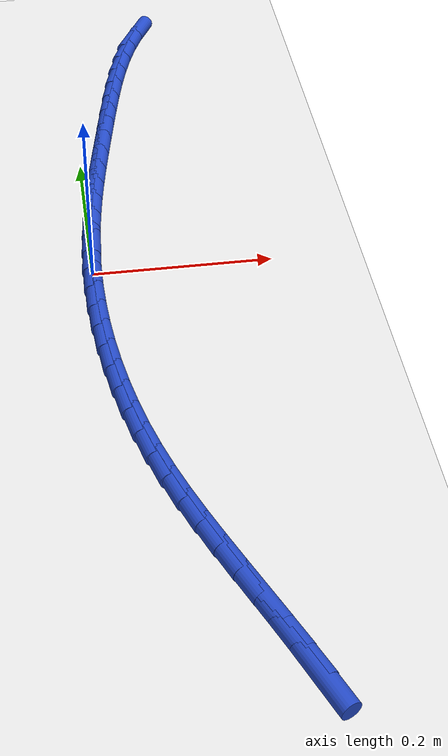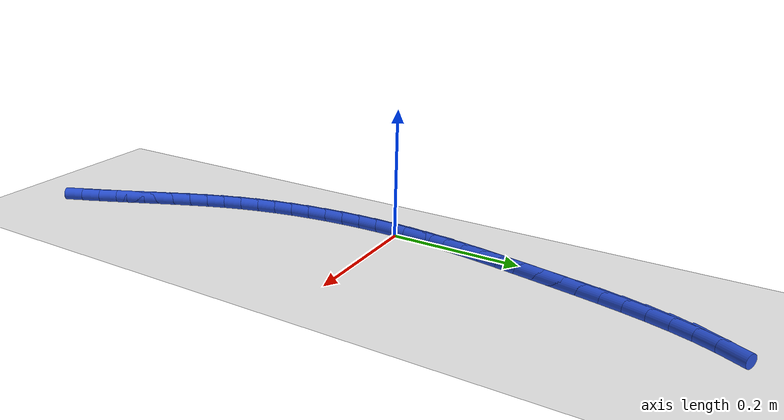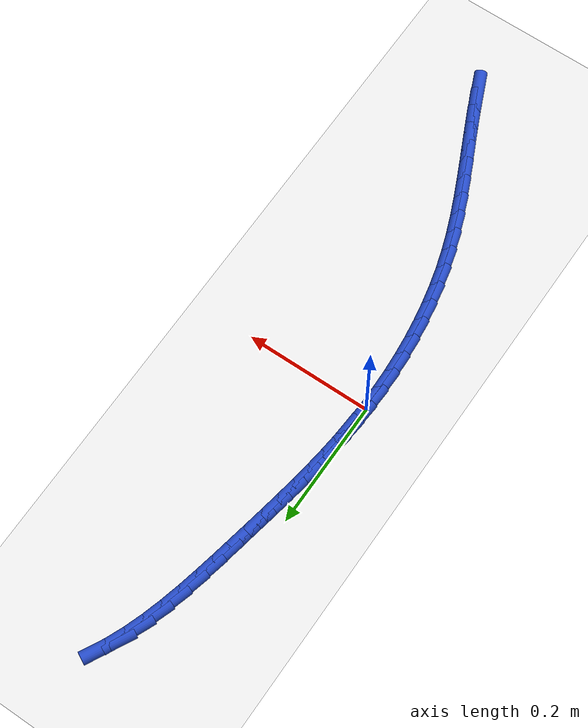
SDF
<sdf version="1.6">
 <world name="default">
  <model name="ground_plane">
   <static>1</static>
   <link name="link">
    <collision name="collision">
     <geometry><plane><normal>0 0 1</normal><size>100 100</size></plane></geometry>
     <surface><friction><ode><mu>100</mu><mu2>50</mu2></ode></friction></surface>
    </collision>
    <visual name="visual">
     <cast_shadows>0</cast_shadows>
     <geometry><plane><normal>0 0 1</normal><size>100 100</size></plane></geometry>
     <material>
      <script><uri>file://media/materials/scripts/gazebo.material</uri><name>Gazebo/WhiteGlow</name></script>
     </material>
    </visual>
   </link>
  </model>
  <model name="line">
   <link name="link_0">
    <pose>1.5612511283791264e-17 -2.7755575615628914e-17 0.01 0 1.57 1.5263340523098143</pose>
    <collision name="collision">
     <geometry><cylinder><radius>0.01</radius><length>0.08</length></cylinder></geometry>
    </collision>
    <visual name="visual">
     <material>
      <script><name>Gazebo/Blue</name><uri>file://media/materials/scripts/gazebo.material</uri></script>
     </material>
     <geometry><cylinder><radius>0.01</radius><length>0.08</length></cylinder></geometry>
    </visual>
   </link>
   <link name="link_1">
    <pose>0.0013306014741881163 0.029906804245079018 0.01 0 1.57 1.4944880462793966</pose>
    <collision name="collision">
     <geometry><cylinder><radius>0.01</radius><length>0.08</length></cylinder></geometry>
    </collision>
    <visual name="visual">
     <material>
      <script><name>Gazebo/Blue</name><uri>file://media/materials/scripts/gazebo.material</uri></script>
     </material>
     <geometry><cylinder><radius>0.01</radius><length>0.08</length></cylinder></geometry>
    </visual>
   </link>
   <link name="link_2">
    <pose>0.003603001537472754 0.0596281875780834 0.01 0 1.57 1.4662224820122574</pose>
    <collision name="collision">
     <geometry><cylinder><radius>0.01</radius><length>0.08</length></cylinder></geometry>
    </collision>
    <visual name="visual">
     <material>
      <script><name>Gazebo/Blue</name><uri>file://media/materials/scripts/gazebo.material</uri></script>
     </material>
     <geometry><cylinder><radius>0.01</radius><length>0.08</length></cylinder></geometry>
    </visual>
   </link>
   <link name="link_3">
    <pose>0.0067117343873408725 0.08924737716499878 0.01 0 1.57 1.4418013670284369</pose>
    <collision name="collision">
     <geometry><cylinder><radius>0.01</radius><length>0.08</length></cylinder></geometry>
    </collision>
    <visual name="visual">
     <material>
      <script><name>Gazebo/Blue</name><uri>file://media/materials/scripts/gazebo.material</uri></script>
     </material>
     <geometry><cylinder><radius>0.01</radius><length>0.08</length></cylinder></geometry>
    </visual>
   </link>
   <link name="link_4">
    <pose>0.0105513342212794 0.11884760017181076 0.01 0 1.57 1.4214010598351268</pose>
    <collision name="collision">
     <geometry><cylinder><radius>0.01</radius><length>0.08</length></cylinder></geometry>
    </collision>
    <visual name="visual">
     <material>
      <script><name>Gazebo/Blue</name><uri>file://media/materials/scripts/gazebo.material</uri></script>
     </material>
     <geometry><cylinder><radius>0.01</radius><length>0.08</length></cylinder></geometry>
    </visual>
   </link>
   <link name="link_5">
    <pose>0.015016335236775286 0.148512083764505 0.01 0 1.57 1.4051165456496912</pose>
    <collision name="collision">
     <geometry><cylinder><radius>0.01</radius><length>0.08</length></cylinder></geometry>
    </collision>
    <visual name="visual">
     <material>
      <script><name>Gazebo/Blue</name><uri>file://media/materials/scripts/gazebo.material</uri></script>
     </material>
     <geometry><cylinder><radius>0.01</radius><length>0.08</length></cylinder></geometry>
    </visual>
   </link>
   <link name="link_6">
    <pose>0.020001271631315463 0.1783240551090671 0.01 0 1.57 1.3929702809782907</pose>
    <collision name="collision">
     <geometry><cylinder><radius>0.01</radius><length>0.08</length></cylinder></geometry>
    </collision>
    <visual name="visual">
     <material>
      <script><name>Gazebo/Blue</name><uri>file://media/materials/scripts/gazebo.material</uri></script>
     </material>
     <geometry><cylinder><radius>0.01</radius><length>0.08</length></cylinder></geometry>
    </visual>
   </link>
   <link name="link_7">
    <pose>0.02540067760238686 0.2083667413714826 0.01 0 1.57 1.3849220156373319</pose>
    <collision name="collision">
     <geometry><cylinder><radius>0.01</radius><length>0.08</length></cylinder></geometry>
    </collision>
    <visual name="visual">
     <material>
      <script><name>Gazebo/Blue</name><uri>file://media/materials/scripts/gazebo.material</uri></script>
     </material>
     <geometry><cylinder><radius>0.01</radius><length>0.08</length></cylinder></geometry>
    </visual>
   </link>
   <link name="link_8">
    <pose>0.03110908734747644 0.23872336971773733 0.01 0 1.57 1.3808784082332122</pose>
    <collision name="collision">
     <geometry><cylinder><radius>0.01</radius><length>0.08</length></cylinder></geometry>
    </collision>
    <visual name="visual">
     <material>
      <script><name>Gazebo/Blue</name><uri>file://media/materials/scripts/gazebo.material</uri></script>
     </material>
     <geometry><cylinder><radius>0.01</radius><length>0.08</length></cylinder></geometry>
    </visual>
   </link>
   <link name="link_9">
    <pose>0.03702103506407113 0.26947716731381677 0.01 0 1.57 1.3785720279207565</pose>
    <collision name="collision">
     <geometry><cylinder><radius>0.01</radius><length>0.08</length></cylinder></geometry>
    </collision>
    <visual name="visual">
     <material>
      <script><name>Gazebo/Blue</name><uri>file://media/materials/scripts/gazebo.material</uri></script>
     </material>
     <geometry><cylinder><radius>0.01</radius><length>0.08</length></cylinder></geometry>
    </visual>
   </link>
   <link name="link_10">
    <pose>0.04308827736458533 0.30065079643314907 0.01 0 1.57 1.3692006358391113</pose>
    <collision name="collision">
     <geometry><cylinder><radius>0.01</radius><length>0.08</length></cylinder></geometry>
    </collision>
    <visual name="visual">
     <material>
      <script><name>Gazebo/Blue</name><uri>file://media/materials/scripts/gazebo.material</uri></script>
     </material>
     <geometry><cylinder><radius>0.01</radius><length>0.08</length></cylinder></geometry>
    </visual>
   </link>
   <link name="link_11">
    <pose>0.049498655112997 0.3320170449363359 0.01 0 1.57 1.3504834893484938</pose>
    <collision name="collision">
     <geometry><cylinder><radius>0.01</radius><length>0.08</length></cylinder></geometry>
    </collision>
    <visual name="visual">
     <material>
      <script><name>Gazebo/Blue</name><uri>file://media/materials/scripts/gazebo.material</uri></script>
     </material>
     <geometry><cylinder><radius>0.01</radius><length>0.08</length></cylinder></geometry>
    </visual>
   </link>
   <link name="link_12">
    <pose>0.0565008850613548 0.36328426891148163 0.01 0 1.57 1.3220518338765654</pose>
    <collision name="collision">
     <geometry><cylinder><radius>0.01</radius><length>0.08</length></cylinder></geometry>
    </collision>
    <visual name="visual">
     <material>
      <script><name>Gazebo/Blue</name><uri>file://media/materials/scripts/gazebo.material</uri></script>
     </material>
     <geometry><cylinder><radius>0.01</radius><length>0.08</length></cylinder></geometry>
    </visual>
   </link>
   <link name="link_13">
    <pose>0.06434368402650485 0.39416082437810845 0.01 0 1.57 1.283178066715591</pose>
    <collision name="collision">
     <geometry><cylinder><radius>0.01</radius><length>0.08</length></cylinder></geometry>
    </collision>
    <visual name="visual">
     <material>
      <script><name>Gazebo/Blue</name><uri>file://media/materials/scripts/gazebo.material</uri></script>
     </material>
     <geometry><cylinder><radius>0.01</radius><length>0.08</length></cylinder></geometry>
    </visual>
   </link>
   <link name="link_14">
    <pose>0.07327576882529341 0.4243550673557384 0.01 0 1.57 1.2328115154408856</pose>
    <collision name="collision">
     <geometry><cylinder><radius>0.01</radius><length>0.08</length></cylinder></geometry>
    </collision>
    <visual name="visual">
     <material>
      <script><name>Gazebo/Blue</name><uri>file://media/materials/scripts/gazebo.material</uri></script>
     </material>
     <geometry><cylinder><radius>0.01</radius><length>0.08</length></cylinder></geometry>
    </visual>
   </link>
   <link name="link_15">
    <pose>0.08354585627456658 0.4535753538638936 0.01 0 1.57 1.1696511075530047</pose>
    <collision name="collision">
     <geometry><cylinder><radius>0.01</radius><length>0.08</length></cylinder></geometry>
    </collision>
    <visual name="visual">
     <material>
      <script><name>Gazebo/Blue</name><uri>file://media/materials/scripts/gazebo.material</uri></script>
     </material>
     <geometry><cylinder><radius>0.01</radius><length>0.08</length></cylinder></geometry>
    </visual>
   </link>
   <link name="link_16">
    <pose>0.09540266319117052 0.48153003992209603 0.01 0 1.57 1.0923041557974338</pose>
    <collision name="collision">
     <geometry><cylinder><radius>0.01</radius><length>0.08</length></cylinder></geometry>
    </collision>
    <visual name="visual">
     <material>
      <script><name>Gazebo/Blue</name><uri>file://media/materials/scripts/gazebo.material</uri></script>
     </material>
     <geometry><cylinder><radius>0.01</radius><length>0.08</length></cylinder></geometry>
    </visual>
   </link>
   <link name="link_212">
    <pose>0.14532909119410814 -0.5189917373898078 0.01 0 1.57 -1.158157949709653</pose>
    <collision name="collision">
     <geometry><cylinder><radius>0.01</radius><length>0.08</length></cylinder></geometry>
    </collision>
    <visual name="visual">
     <material>
      <script><name>Gazebo/Blue</name><uri>file://media/materials/scripts/gazebo.material</uri></script>
     </material>
     <geometry><cylinder><radius>0.01</radius><length>0.08</length></cylinder></geometry>
    </visual>
   </link>
   <link name="link_213">
    <pose>0.13289230693029314 -0.49058243782886474 0.01 0 1.57 -1.1412823306430213</pose>
    <collision name="collision">
     <geometry><cylinder><radius>0.01</radius><length>0.08</length></cylinder></geometry>
    </collision>
    <visual name="visual">
     <material>
      <script><name>Gazebo/Blue</name><uri>file://media/materials/scripts/gazebo.material</uri></script>
     </material>
     <geometry><cylinder><radius>0.01</radius><length>0.08</length></cylinder></geometry>
    </visual>
   </link>
   <link name="link_214">
    <pose>0.120103337817403 -0.4626609318984355 0.01 0 1.57 -1.1317311599028914</pose>
    <collision name="collision">
     <geometry><cylinder><radius>0.01</radius><length>0.08</length></cylinder></geometry>
    </collision>
    <visual name="visual">
     <material>
      <script><name>Gazebo/Blue</name><uri>file://media/materials/scripts/gazebo.material</uri></script>
     </material>
     <geometry><cylinder><radius>0.01</radius><length>0.08</length></cylinder></geometry>
    </visual>
   </link>
   <link name="link_215">
    <pose>0.10715584686141705 -0.4350919037419531 0.01 0 1.57 -1.1297307278919564</pose>
    <collision name="collision">
     <geometry><cylinder><radius>0.01</radius><length>0.08</length></cylinder></geometry>
    </collision>
    <visual name="visual">
     <material>
      <script><name>Gazebo/Blue</name><uri>file://media/materials/scripts/gazebo.material</uri></script>
     </material>
     <geometry><cylinder><radius>0.01</radius><length>0.08</length></cylinder></geometry>
    </visual>
   </link>
   <link name="link_216">
    <pose>0.09424349706831564 -0.4077400375028533 0.01 0 1.57 -1.135448619773363</pose>
    <collision name="collision">
     <geometry><cylinder><radius>0.01</radius><length>0.08</length></cylinder></geometry>
    </collision>
    <visual name="visual">
     <material>
      <script><name>Gazebo/Blue</name><uri>file://media/materials/scripts/gazebo.material</uri></script>
     </material>
     <geometry><cylinder><radius>0.01</radius><length>0.08</length></cylinder></geometry>
    </visual>
   </link>
   <link name="link_217">
    <pose>0.08155995144407803 -0.3804700173245692 0.01 0 1.57 -1.148992674776799</pose>
    <collision name="collision">
     <geometry><cylinder><radius>0.01</radius><length>0.08</length></cylinder></geometry>
    </collision>
    <visual name="visual">
     <material>
      <script><name>Gazebo/Blue</name><uri>file://media/materials/scripts/gazebo.material</uri></script>
     </material>
     <geometry><cylinder><radius>0.01</radius><length>0.08</length></cylinder></geometry>
    </visual>
   </link>
   <link name="link_218">
    <pose>0.0692988729946839 -0.3531465273505349 0.01 0 1.57 -1.1703972384855543</pose>
    <collision name="collision">
     <geometry><cylinder><radius>0.01</radius><length>0.08</length></cylinder></geometry>
    </collision>
    <visual name="visual">
     <material>
      <script><name>Gazebo/Blue</name><uri>file://media/materials/scripts/gazebo.material</uri></script>
     </material>
     <geometry><cylinder><radius>0.01</radius><length>0.08</length></cylinder></geometry>
    </visual>
   </link>
   <link name="link_219">
    <pose>0.05765392472611258 -0.32563425172418375 0.01 0 1.57 -1.199596230130548</pose>
    <collision name="collision">
     <geometry><cylinder><radius>0.01</radius><length>0.08</length></cylinder></geometry>
    </collision>
    <visual name="visual">
     <material>
      <script><name>Gazebo/Blue</name><uri>file://media/materials/scripts/gazebo.material</uri></script>
     </material>
     <geometry><cylinder><radius>0.01</radius><length>0.08</length></cylinder></geometry>
    </visual>
   </link>
   <link name="link_220">
    <pose>0.04681876964434434 -0.29779787458895124 0.01 0 1.57 -1.2363847730419337</pose>
    <collision name="collision">
     <geometry><cylinder><radius>0.01</radius><length>0.08</length></cylinder></geometry>
    </collision>
    <visual name="visual">
     <material>
      <script><name>Gazebo/Blue</name><uri>file://media/materials/scripts/gazebo.material</uri></script>
     </material>
     <geometry><cylinder><radius>0.01</radius><length>0.08</length></cylinder></geometry>
    </visual>
   </link>
   <link name="link_221">
    <pose>0.036987070716925814 -0.2695020801305286 0.01 0 1.57 -1.2788486768874545</pose>
    <collision name="collision">
     <geometry><cylinder><radius>0.01</radius><length>0.08</length></cylinder></geometry>
    </collision>
    <visual name="visual">
     <material>
      <script><name>Gazebo/Blue</name><uri>file://media/materials/scripts/gazebo.material</uri></script>
     </material>
     <geometry><cylinder><radius>0.01</radius><length>0.08</length></cylinder></geometry>
    </visual>
   </link>
   <link name="link_222">
    <pose>0.028316384210787793 -0.24065125311804061 0.01 0 1.57 -1.3208444947550386</pose>
    <collision name="collision">
     <geometry><cylinder><radius>0.01</radius><length>0.08</length></cylinder></geometry>
    </collision>
    <visual name="visual">
     <material>
      <script><name>Gazebo/Blue</name><uri>file://media/materials/scripts/gazebo.material</uri></script>
     </material>
     <geometry><cylinder><radius>0.01</radius><length>0.08</length></cylinder></geometry>
    </visual>
   </link>
   <link name="link_223">
    <pose>0.020824240125293346 -0.21130374211191388 0.01 0 1.57 -1.3611392027204627</pose>
    <collision name="collision">
     <geometry><cylinder><radius>0.01</radius><length>0.08</length></cylinder></geometry>
    </collision>
    <visual name="visual">
     <material>
      <script><name>Gazebo/Blue</name><uri>file://media/materials/scripts/gazebo.material</uri></script>
     </material>
     <geometry><cylinder><radius>0.01</radius><length>0.08</length></cylinder></geometry>
    </visual>
   </link>
   <link name="link_224">
    <pose>0.014494228706813592 -0.1815552136211123 0.01 0 1.57 -1.3999775825553362</pose>
    <collision name="collision">
     <geometry><cylinder><radius>0.01</radius><length>0.08</length></cylinder></geometry>
    </collision>
    <visual name="visual">
     <material>
      <script><name>Gazebo/Blue</name><uri>file://media/materials/scripts/gazebo.material</uri></script>
     </material>
     <geometry><cylinder><radius>0.01</radius><length>0.08</length></cylinder></geometry>
    </visual>
   </link>
   <link name="link_225">
    <pose>0.009309940201719047 -0.15150133415459724 0.01 0 1.57 -1.437600938555081</pose>
    <collision name="collision">
     <geometry><cylinder><radius>0.01</radius><length>0.08</length></cylinder></geometry>
    </collision>
    <visual name="visual">
     <material>
      <script><name>Gazebo/Blue</name><uri>file://media/materials/scripts/gazebo.material</uri></script>
     </material>
     <geometry><cylinder><radius>0.01</radius><length>0.08</length></cylinder></geometry>
    </visual>
   </link>
   <link name="link_226">
    <pose>0.005254964856380443 -0.12123777022133114 0.01 0 1.57 -1.4742473468865984</pose>
    <collision name="collision">
     <geometry><cylinder><radius>0.01</radius><length>0.08</length></cylinder></geometry>
    </collision>
    <visual name="visual">
     <material>
      <script><name>Gazebo/Blue</name><uri>file://media/materials/scripts/gazebo.material</uri></script>
     </material>
     <geometry><cylinder><radius>0.01</radius><length>0.08</length></cylinder></geometry>
    </visual>
   </link>
   <link name="link_227">
    <pose>0.002312892917168504 -0.0908601883302761 0.01 0 1.57 -1.5101528433863454</pose>
    <collision name="collision">
     <geometry><cylinder><radius>0.01</radius><length>0.08</length></cylinder></geometry>
    </collision>
    <visual name="visual">
     <material>
      <script><name>Gazebo/Blue</name><uri>file://media/materials/scripts/gazebo.material</uri></script>
     </material>
     <geometry><cylinder><radius>0.01</radius><length>0.08</length></cylinder></geometry>
    </visual>
   </link>
   <link name="link_228">
    <pose>0.0004673146304539329 -0.060464254990393804 0.01 0 1.57 -1.5455533628502724</pose>
    <collision name="collision">
     <geometry><cylinder><radius>0.01</radius><length>0.08</length></cylinder></geometry>
    </collision>
    <visual name="visual">
     <material>
      <script><name>Gazebo/Blue</name><uri>file://media/materials/scripts/gazebo.material</uri></script>
     </material>
     <geometry><cylinder><radius>0.01</radius><length>0.08</length></cylinder></geometry>
    </visual>
   </link>
   <link name="link_229">
    <pose>-0.00029817975739244995 -0.030145636710647978 0.01 0 1.57 1.5609053420267816</pose>
    <collision name="collision">
     <geometry><cylinder><radius>0.01</radius><length>0.08</length></cylinder></geometry>
    </collision>
    <visual name="visual">
     <material>
      <script><name>Gazebo/Blue</name><uri>file://media/materials/scripts/gazebo.material</uri></script>
     </material>
     <geometry><cylinder><radius>0.01</radius><length>0.08</length></cylinder></geometry>
    </visual>
   </link>
   <link name="link_230">
    <pose>1.8214596497756474e-17 -1.5265566588595902e-16 0.01 0 1.57 1.5257939414541306</pose>
    <collision name="collision">
     <geometry><cylinder><radius>0.01</radius><length>0.08</length></cylinder></geometry>
    </collision>
    <visual name="visual">
     <material>
      <script><name>Gazebo/Blue</name><uri>file://media/materials/scripts/gazebo.material</uri></script>
     </material>
     <geometry><cylinder><radius>0.01</radius><length>0.08</length></cylinder></geometry>
    </visual>
   </link>
   <link name="link_231">
    <pose>0.0013454441490020723 0.029876988632587392 0.01 0 1.57 1.4904517473966923</pose>
    <collision name="collision">
     <geometry><cylinder><radius>0.01</radius><length>0.08</length></cylinder></geometry>
    </collision>
    <visual name="visual">
     <material>
      <script><name>Gazebo/Blue</name><uri>file://media/materials/scripts/gazebo.material</uri></script>
     </material>
     <geometry><cylinder><radius>0.01</radius><length>0.08</length></cylinder></geometry>
    </visual>
   </link>
   <link name="link_232">
    <pose>0.0037217429359844394 0.05938966267815239 0.01 0 1.57 1.5082116556493737</pose>
    <collision name="collision">
     <geometry><cylinder><radius>0.01</radius><length>0.08</length></cylinder></geometry>
    </collision>
    <visual name="visual">
     <material>
      <script><name>Gazebo/Blue</name><uri>file://media/materials/scripts/gazebo.material</uri></script>
     </material>
     <geometry><cylinder><radius>0.01</radius><length>0.08</length></cylinder></geometry>
    </visual>
   </link>
  </model>
 </world>
</sdf>
